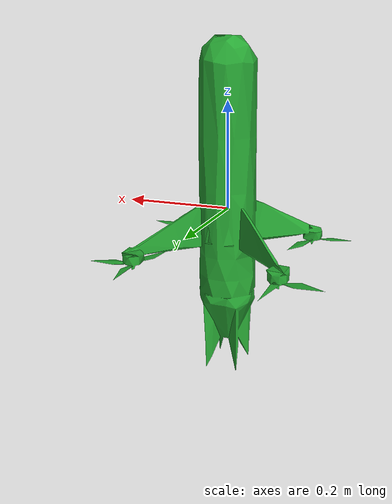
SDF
<?xml version="1.0" ?>
<sdf version="1.6">
  <model name="sting2">
    <static>false</static>
    <link name="link">
      <gravity>0</gravity>
      <inertial>
        <mass>15.0</mass>
        <inertia>
          <ixx>1.0</ixx><ixy>0.0</ixy><ixz>0.0</ixz>
          <iyy>1.0</iyy><iyz>0.0</iyz>
          <izz>0.5</izz>
        </inertia>
      </inertial>
      <collision name="collision">
        <geometry>
          <cylinder>
            <radius>0.15</radius>
            <length>0.8</length>
          </cylinder>
        </geometry>
      </collision>
      <visual name="visual">
        <pose>0 0 0 0 0 0</pose>
        <geometry>
          <mesh>
            <uri>model://sting2/meshes/sting.dae</uri>
            <scale>0.33 0.33 0.33</scale>
          </mesh>
        </geometry>
        <material>
          <script>
            <uri>file://media/materials/scripts/gazebo.material</uri>
            <name>Gazebo/Green</name>
          </script>
          <ambient>0 1 0 1</ambient>
          <diffuse>0 1 0 1</diffuse>
        </material>
      </visual>
    </link>
  </model>
</sdf>
